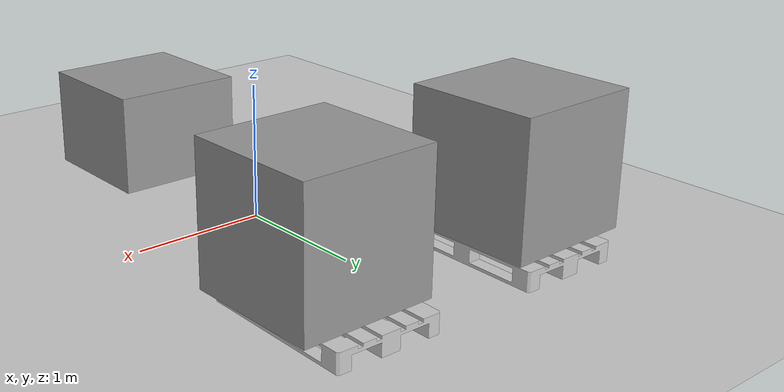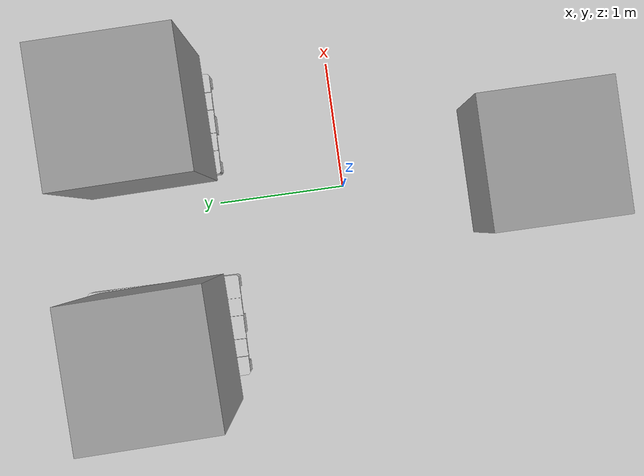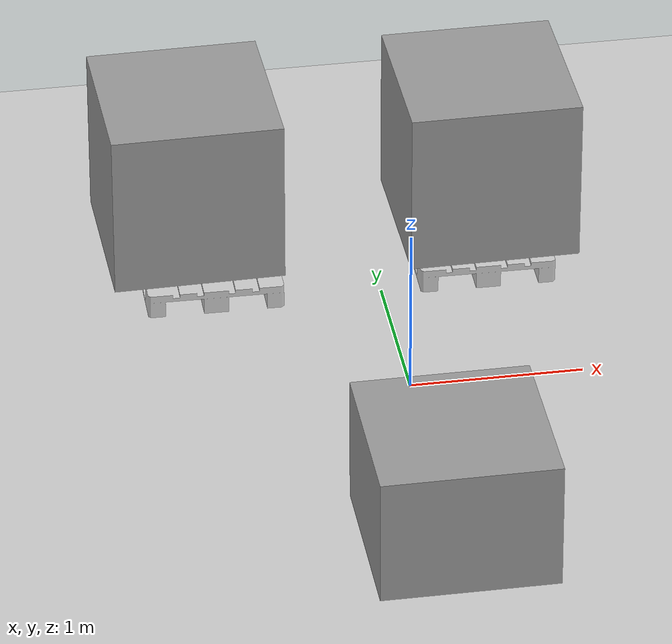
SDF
<sdf version="1.7">
 <world name="default">
  <light name="sun" type="directional">
   <pose>0 0 10 0 -0 0</pose>
   <diffuse>0.8 0.8 0.8 1</diffuse>
   <specular>0.2 0.2 0.2 1</specular>
   <attenuation>
    <range>1000</range>
    <constant>0.9</constant>
    <linear>0.01</linear>
    <quadratic>0.001</quadratic>
   </attenuation>
   <direction>-0.5 0.1 -0.9</direction>
   <spot><inner_angle>0</inner_angle><outer_angle>0</outer_angle><falloff>0</falloff></spot>
  </light>
  <model name="ground_plane">
   <static>1</static>
   <link name="link">
    <collision name="collision">
     <geometry><plane><normal>0 0 1</normal><size>100 100</size></plane></geometry>
     <surface>
      <contact><collide_bitmask>65535</collide_bitmask></contact>
      <friction><ode><mu>100</mu><mu2>50</mu2></ode></friction>
     </surface>
    </collision>
    <visual name="visual">
     <cast_shadows>0</cast_shadows>
     <geometry><plane><normal>0 0 1</normal><size>100 100</size></plane></geometry>
     <material>
      <script><uri>file://media/materials/scripts/gazebo.material</uri><name>Gazebo/Grey</name></script>
     </material>
    </visual>
   </link>
  </model>
  <gravity>0 0 -9.8</gravity>
  <magnetic_field>6e-06 2.3e-05 -4.2e-05</magnetic_field>
  <atmosphere type="adiabatic"/>
  <physics type="ode">
   <max_step_size>0.001</max_step_size>
   <real_time_factor>1</real_time_factor>
   <real_time_update_rate>1000</real_time_update_rate>
  </physics>
  <scene><ambient>0.4 0.4 0.4 1</ambient><background>0.7 0.7 0.7 1</background><shadows>1</shadows></scene>
  <spherical_coordinates>
   <surface_model>EARTH_WGS84</surface_model>
   <latitude_deg>0</latitude_deg>
   <longitude_deg>0</longitude_deg>
   <elevation>0</elevation>
   <heading_deg>0</heading_deg>
  </spherical_coordinates>
  <model name="euro_pallet">
   <link name="link">
    <inertial>
     <mass>20</mass>
     <inertia><ixx>2.43</ixx><ixy>0</ixy><ixz>0</ixz><iyy>1.1</iyy><iyz>0</iyz><izz>3.47</izz></inertia>
    </inertial>
    <collision name="collision">
     <pose>0 0 0.05 0 -0 0</pose>
     <geometry><mesh><uri>model://euro_pallet/meshes/pallet.dae</uri><scale>0.1 0.1 0.1</scale></mesh></geometry>
    </collision>
    <visual name="visual">
     <pose>0 0 0.05 0 -0 0</pose>
     <geometry><mesh><uri>model://euro_pallet/meshes/pallet.dae</uri><scale>0.1 0.1 0.1</scale></mesh></geometry>
    </visual>
   </link>
   <pose>-0.972364 1.52626 0.072 0 -0 -0.012601</pose>
  </model>
  <model name="euro_pallet_0">
   <link name="link">
    <inertial>
     <mass>20</mass>
     <inertia><ixx>2.43</ixx><ixy>0</ixy><ixz>0</ixz><iyy>1.1</iyy><iyz>0</iyz><izz>3.47</izz></inertia>
    </inertial>
    <collision name="collision">
     <pose>0 0 0.05 0 -0 0</pose>
     <geometry><mesh><uri>model://euro_pallet/meshes/pallet.dae</uri><scale>0.1 0.1 0.1</scale></mesh></geometry>
    </collision>
    <visual name="visual">
     <pose>0 0 0.05 0 -0 0</pose>
     <geometry><mesh><uri>model://euro_pallet/meshes/pallet.dae</uri><scale>0.1 0.1 0.1</scale></mesh></geometry>
    </visual>
   </link>
   <pose>0.633258 1.53728 0.071999 2e-06 -8e-06 -0.012954</pose>
  </model>
  <model name="unit_box">
   <pose>-1.06874 1.52459 0.644008 3e-06 -2.2e-05 0.017472</pose>
   <link name="link">
    <inertial>
     <mass>1</mass>
     <inertia>
      <ixx>0.166667</ixx>
      <ixy>0</ixy>
      <ixz>0</ixz>
      <iyy>0.166667</iyy>
      <iyz>0</iyz>
      <izz>0.166667</izz>
     </inertia>
    </inertial>
    <collision name="collision"><geometry><box><size>1 1 1</size></box></geometry></collision>
    <visual name="visual">
     <geometry><box><size>1 1 1</size></box></geometry>
     <material>
      <script><name>Gazebo/Grey</name><uri>file://media/materials/scripts/gazebo.material</uri></script>
     </material>
    </visual>
   </link>
  </model>
  <model name="unit_box_0">
   <pose>0.668739 1.48377 0.644017 3e-06 4.1e-05 0.010027</pose>
   <link name="link">
    <inertial>
     <mass>1</mass>
     <inertia>
      <ixx>0.166667</ixx>
      <ixy>0</ixy>
      <ixz>0</ixz>
      <iyy>0.166667</iyy>
      <iyz>0</iyz>
      <izz>0.166667</izz>
     </inertia>
    </inertial>
    <collision name="collision"><geometry><box><size>1 1 1</size></box></geometry></collision>
    <visual name="visual">
     <geometry><box><size>1 1 1</size></box></geometry>
     <material>
      <script><name>Gazebo/Grey</name><uri>file://media/materials/scripts/gazebo.material</uri></script>
     </material>
    </visual>
   </link>
  </model>
  <model name="unit_box_1">
   <pose>-0.013421 -1.49794 0.249699 -1e-06 -0.003075 0.000232</pose>
   <link name="link">
    <inertial>
     <mass>1</mass>
     <inertia>
      <ixx>0.166667</ixx>
      <ixy>0</ixy>
      <ixz>0</ixz>
      <iyy>0.166667</iyy>
      <iyz>0</iyz>
      <izz>0.166667</izz>
     </inertia>
    </inertial>
    <collision name="collision"><geometry><box><size>1 1 1</size></box></geometry></collision>
    <visual name="visual">
     <geometry><box><size>1 1 1</size></box></geometry>
     <material>
      <script><name>Gazebo/Grey</name><uri>file://media/materials/scripts/gazebo.material</uri></script>
     </material>
    </visual>
   </link>
  </model>
 </world>
</sdf>
